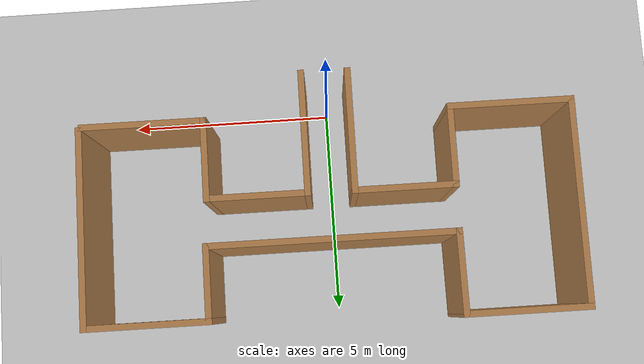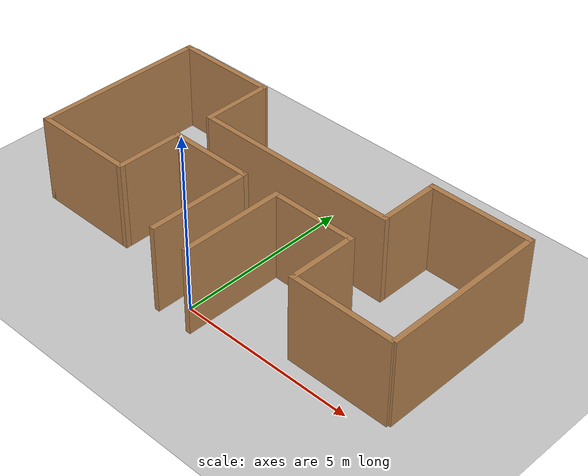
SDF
<sdf version="1.7">
 <world name="default">
  <light name="sun" type="directional">
   <pose>0 0 10 0 -0 0</pose>
   <diffuse>0.8 0.8 0.8 1</diffuse>
   <specular>0.2 0.2 0.2 1</specular>
   <attenuation>
    <range>1000</range>
    <constant>0.9</constant>
    <linear>0.01</linear>
    <quadratic>0.001</quadratic>
   </attenuation>
   <direction>-0.5 0.1 -0.9</direction>
   <spot><inner_angle>0</inner_angle><outer_angle>0</outer_angle><falloff>0</falloff></spot>
  </light>
  <model name="ground_plane">
   <static>1</static>
   <link name="link">
    <collision name="collision">
     <geometry><plane><normal>0 0 1</normal><size>100 100</size></plane></geometry>
     <surface>
      <contact><collide_bitmask>65535</collide_bitmask></contact>
      <friction><ode><mu>100</mu><mu2>50</mu2></ode></friction>
     </surface>
    </collision>
    <visual name="visual">
     <cast_shadows>0</cast_shadows>
     <geometry><plane><normal>0 0 1</normal><size>100 100</size></plane></geometry>
     <material>
      <script><uri>file://media/materials/scripts/gazebo.material</uri><name>Gazebo/Grey</name></script>
     </material>
    </visual>
   </link>
  </model>
  <gravity>0 0 -9.8</gravity>
  <magnetic_field>6e-06 2.3e-05 -4.2e-05</magnetic_field>
  <atmosphere type="adiabatic"/>
  <physics type="ode">
   <max_step_size>0.001</max_step_size>
   <real_time_factor>1</real_time_factor>
   <real_time_update_rate>1000</real_time_update_rate>
  </physics>
  <scene><ambient>0.4 0.4 0.4 1</ambient><background>0.7 0.7 0.7 1</background><shadows>1</shadows></scene>
  <spherical_coordinates>
   <surface_model>EARTH_WGS84</surface_model>
   <latitude_deg>0</latitude_deg>
   <longitude_deg>0</longitude_deg>
   <elevation>0</elevation>
   <heading_deg>0</heading_deg>
  </spherical_coordinates>
  <model name="practice_exercise1">
   <pose>0.063302 2.41718 0 0 -0 1.56604</pose>
   <link name="Wall_0">
    <collision name="Wall_0_Collision">
     <geometry><box><size>3 0.15 2.5</size></box></geometry>
     <pose>0 0 1.25 0 -0 0</pose>
    </collision>
    <visual name="Wall_0_Visual">
     <pose>0 0 1.25 0 -0 0</pose>
     <geometry><box><size>3 0.15 2.5</size></box></geometry>
     <material>
      <script><uri>file://media/materials/scripts/gazebo.material</uri><name>Gazebo/Wood</name></script>
      <ambient>1 1 1 1</ambient>
     </material>
     <meta><layer>0</layer></meta>
    </visual>
    <pose>-1.49531 0.583042 0 0 -0 0</pose>
   </link>
   <link name="Wall_1">
    <collision name="Wall_1_Collision">
     <geometry><box><size>2.5 0.15 2.5</size></box></geometry>
     <pose>0 0 1.25 0 -0 0</pose>
    </collision>
    <visual name="Wall_1_Visual">
     <pose>0 0 1.25 0 -0 0</pose>
     <geometry><box><size>2.5 0.15 2.5</size></box></geometry>
     <material>
      <script><uri>file://media/materials/scripts/gazebo.material</uri><name>Gazebo/Wood</name></script>
      <ambient>1 1 1 1</ambient>
     </material>
     <meta><layer>0</layer></meta>
    </visual>
    <pose>-0.070315 1.75804 0 0 -0 1.5708</pose>
   </link>
   <link name="Wall_10">
    <collision name="Wall_10_Collision">
     <geometry><box><size>3 0.15 2.5</size></box></geometry>
     <pose>0 0 1.25 0 -0 0</pose>
    </collision>
    <visual name="Wall_10_Visual">
     <pose>0 0 1.25 0 -0 0</pose>
     <geometry><box><size>3 0.15 2.5</size></box></geometry>
     <material>
      <script><uri>file://media/materials/scripts/gazebo.material</uri><name>Gazebo/Wood</name></script>
      <ambient>1 1 1 1</ambient>
     </material>
     <meta><layer>0</layer></meta>
    </visual>
    <pose>-1.92031 4.35804 0 0 -0 1.5708</pose>
   </link>
   <link name="Wall_11">
    <collision name="Wall_11_Collision">
     <geometry><box><size>5 0.15 2.5</size></box></geometry>
     <pose>0 0 1.25 0 -0 0</pose>
    </collision>
    <visual name="Wall_11_Visual">
     <pose>0 0 1.25 0 -0 0</pose>
     <geometry><box><size>5 0.15 2.5</size></box></geometry>
     <material>
      <script><uri>file://media/materials/scripts/gazebo.material</uri><name>Gazebo/Wood</name></script>
      <ambient>1 1 1 1</ambient>
     </material>
     <meta><layer>0</layer></meta>
    </visual>
    <pose>0.504685 5.78304 0 0 -0 0</pose>
   </link>
   <link name="Wall_12">
    <collision name="Wall_12_Collision">
     <geometry><box><size>3 0.15 2.5</size></box></geometry>
     <pose>0 0 1.25 0 -0 0</pose>
    </collision>
    <visual name="Wall_12_Visual">
     <pose>0 0 1.25 0 -0 0</pose>
     <geometry><box><size>3 0.15 2.5</size></box></geometry>
     <material>
      <script><uri>file://media/materials/scripts/gazebo.material</uri><name>Gazebo/Wood</name></script>
      <ambient>1 1 1 1</ambient>
     </material>
     <meta><layer>0</layer></meta>
    </visual>
    <pose>2.92969 4.35804 0 0 -0 -1.5708</pose>
   </link>
   <link name="Wall_13">
    <collision name="Wall_13_Collision">
     <geometry><box><size>2.05678 0.15 2.5</size></box></geometry>
     <pose>0 0 1.25 0 -0 0</pose>
    </collision>
    <visual name="Wall_13_Visual">
     <pose>0 0 1.25 0 -0 0</pose>
     <geometry><box><size>2.05678 0.15 2.5</size></box></geometry>
     <material>
      <script><uri>file://media/materials/scripts/gazebo.material</uri><name>Gazebo/Wood</name></script>
      <ambient>1 1 1 1</ambient>
     </material>
     <meta><layer>0</layer></meta>
    </visual>
    <pose>1.97633 2.925 0 0 -0 -3.13316</pose>
   </link>
   <link name="Wall_15">
    <collision name="Wall_15_Collision">
     <geometry><box><size>2 0.15 2.5</size></box></geometry>
     <pose>0 0 1.25 0 -0 0</pose>
    </collision>
    <visual name="Wall_15_Visual">
     <pose>0 0 1.25 0 -0 0</pose>
     <geometry><box><size>2 0.15 2.5</size></box></geometry>
     <material>
      <script><uri>file://media/materials/scripts/gazebo.material</uri><name>Gazebo/Wood</name></script>
      <ambient>1 1 1 1</ambient>
     </material>
     <meta><layer>0</layer></meta>
    </visual>
    <pose>-1.00531 -2.86696 0 0 -0 3.14159</pose>
   </link>
   <link name="Wall_17">
    <collision name="Wall_17_Collision">
     <geometry><box><size>3 0.15 2.5</size></box></geometry>
     <pose>0 0 1.25 0 -0 0</pose>
    </collision>
    <visual name="Wall_17_Visual">
     <pose>0 0 1.25 0 -0 0</pose>
     <geometry><box><size>3 0.15 2.5</size></box></geometry>
     <material>
      <script><uri>file://media/materials/scripts/gazebo.material</uri><name>Gazebo/Wood</name></script>
      <ambient>1 1 1 1</ambient>
     </material>
     <meta><layer>0</layer></meta>
    </visual>
    <pose>-1.93032 -4.29196 0 0 -0 -1.5708</pose>
   </link>
   <link name="Wall_20">
    <collision name="Wall_20_Collision">
     <geometry><box><size>3 0.15 2.5</size></box></geometry>
     <pose>0 0 1.25 0 -0 0</pose>
    </collision>
    <visual name="Wall_20_Visual">
     <pose>0 0 1.25 0 -0 0</pose>
     <geometry><box><size>3 0.15 2.5</size></box></geometry>
     <material>
      <script><uri>file://media/materials/scripts/gazebo.material</uri><name>Gazebo/Wood</name></script>
      <ambient>1 1 1 1</ambient>
     </material>
     <meta><layer>0</layer></meta>
    </visual>
    <pose>2.73508 -4.35804 0 0 -0 1.5708</pose>
   </link>
   <link name="Wall_21">
    <collision name="Wall_21_Collision">
     <geometry><box><size>1.86211 0.15 2.5</size></box></geometry>
     <pose>0 0 1.25 0 -0 0</pose>
    </collision>
    <visual name="Wall_21_Visual">
     <pose>0 0 1.25 0 -0 0</pose>
     <geometry><box><size>1.86211 0.15 2.5</size></box></geometry>
     <material>
      <script><uri>file://media/materials/scripts/gazebo.material</uri><name>Gazebo/Wood</name></script>
      <ambient>1 1 1 1</ambient>
     </material>
     <meta><layer>0</layer></meta>
    </visual>
    <pose>1.87903 -2.93304 0 0 -0 3.14159</pose>
   </link>
   <link name="Wall_4">
    <collision name="Wall_4_Collision">
     <geometry><box><size>3 0.15 2.5</size></box></geometry>
     <pose>0 0 1.25 0 -0 0</pose>
    </collision>
    <visual name="Wall_4_Visual">
     <pose>0 0 1.25 0 -0 0</pose>
     <geometry><box><size>3 0.15 2.5</size></box></geometry>
     <material>
      <script><uri>file://media/materials/scripts/gazebo.material</uri><name>Gazebo/Wood</name></script>
      <ambient>1 1 1 1</ambient>
     </material>
     <meta><layer>0</layer></meta>
    </visual>
    <pose>-1.50531 -0.516958 0 0 -0 0</pose>
   </link>
   <link name="Wall_5">
    <collision name="Wall_5_Collision">
     <geometry><box><size>2.5 0.15 2.5</size></box></geometry>
     <pose>0 0 1.25 0 -0 0</pose>
    </collision>
    <visual name="Wall_5_Visual">
     <pose>0 0 1.25 0 -0 0</pose>
     <geometry><box><size>2.5 0.15 2.5</size></box></geometry>
     <material>
      <script><uri>file://media/materials/scripts/gazebo.material</uri><name>Gazebo/Wood</name></script>
      <ambient>1 1 1 1</ambient>
     </material>
     <meta><layer>0</layer></meta>
    </visual>
    <pose>-0.080315 -1.69196 0 0 -0 -1.5708</pose>
   </link>
   <link name="Wall_68">
    <collision name="Wall_68_Collision">
     <geometry><box><size>4.75 0.15 2.5</size></box></geometry>
     <pose>0 0 1.25 0 -0 0</pose>
    </collision>
    <visual name="Wall_68_Visual">
     <pose>0 0 1.25 0 -0 0</pose>
     <geometry><box><size>4.75 0.15 2.5</size></box></geometry>
     <material>
      <script><uri>file://media/materials/scripts/gazebo.material</uri><name>Gazebo/Wood</name></script>
      <ambient>1 1 1 1</ambient>
     </material>
     <meta><layer>0</layer></meta>
    </visual>
    <pose>0.435082 -5.78304 0 0 -0 3.14159</pose>
   </link>
   <link name="Wall_7">
    <collision name="Wall_7_Collision">
     <geometry><box><size>6 0.15 2.5</size></box></geometry>
     <pose>0 0 1.25 0 -0 0</pose>
    </collision>
    <visual name="Wall_7_Visual">
     <pose>0 0 1.25 0 -0 0</pose>
     <geometry><box><size>6 0.15 2.5</size></box></geometry>
     <material>
      <script><uri>file://media/materials/scripts/gazebo.material</uri><name>Gazebo/Wood</name></script>
      <ambient>1 1 1 1</ambient>
     </material>
     <meta><layer>0</layer></meta>
    </visual>
    <pose>1.02297 -0.008043 0 0 -0 -1.5708</pose>
   </link>
   <link name="Wall_9">
    <collision name="Wall_9_Collision">
     <geometry><box><size>2 0.15 2.5</size></box></geometry>
     <pose>0 0 1.25 0 -0 0</pose>
    </collision>
    <visual name="Wall_9_Visual">
     <pose>0 0 1.25 0 -0 0</pose>
     <geometry><box><size>2 0.15 2.5</size></box></geometry>
     <material>
      <script><uri>file://media/materials/scripts/gazebo.material</uri><name>Gazebo/Wood</name></script>
      <ambient>1 1 1 1</ambient>
     </material>
     <meta><layer>0</layer></meta>
    </visual>
    <pose>-0.995315 2.93304 0 0 -0 3.14159</pose>
   </link>
   <static>1</static>
  </model>
 </world>
</sdf>
